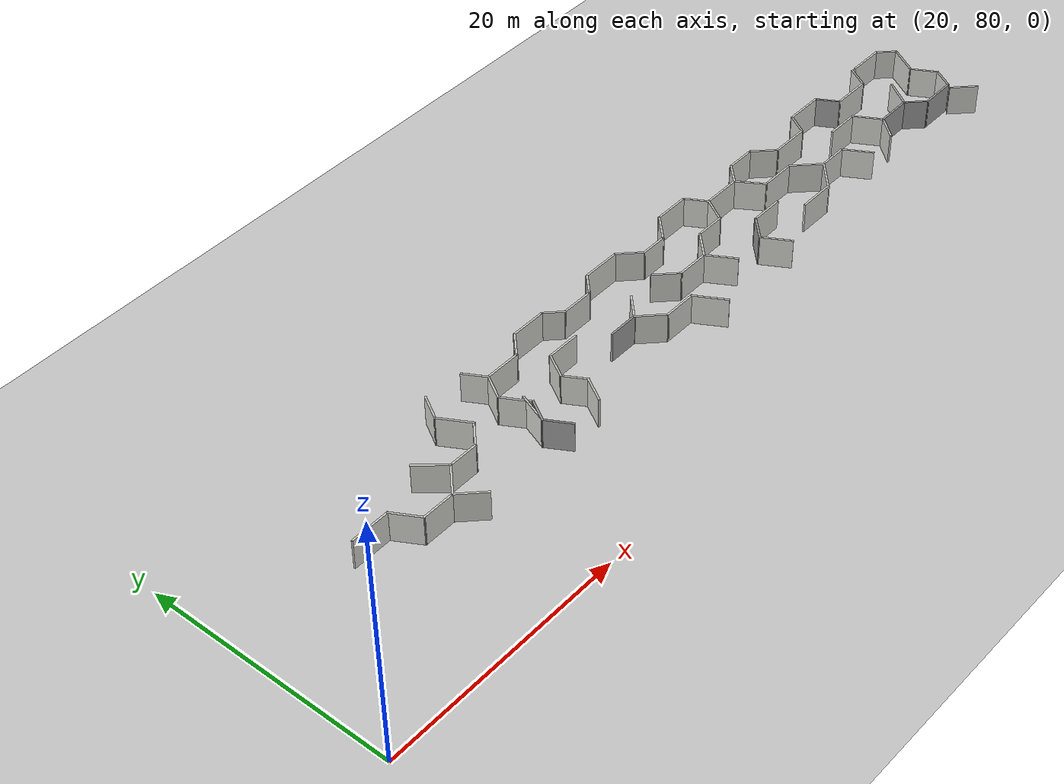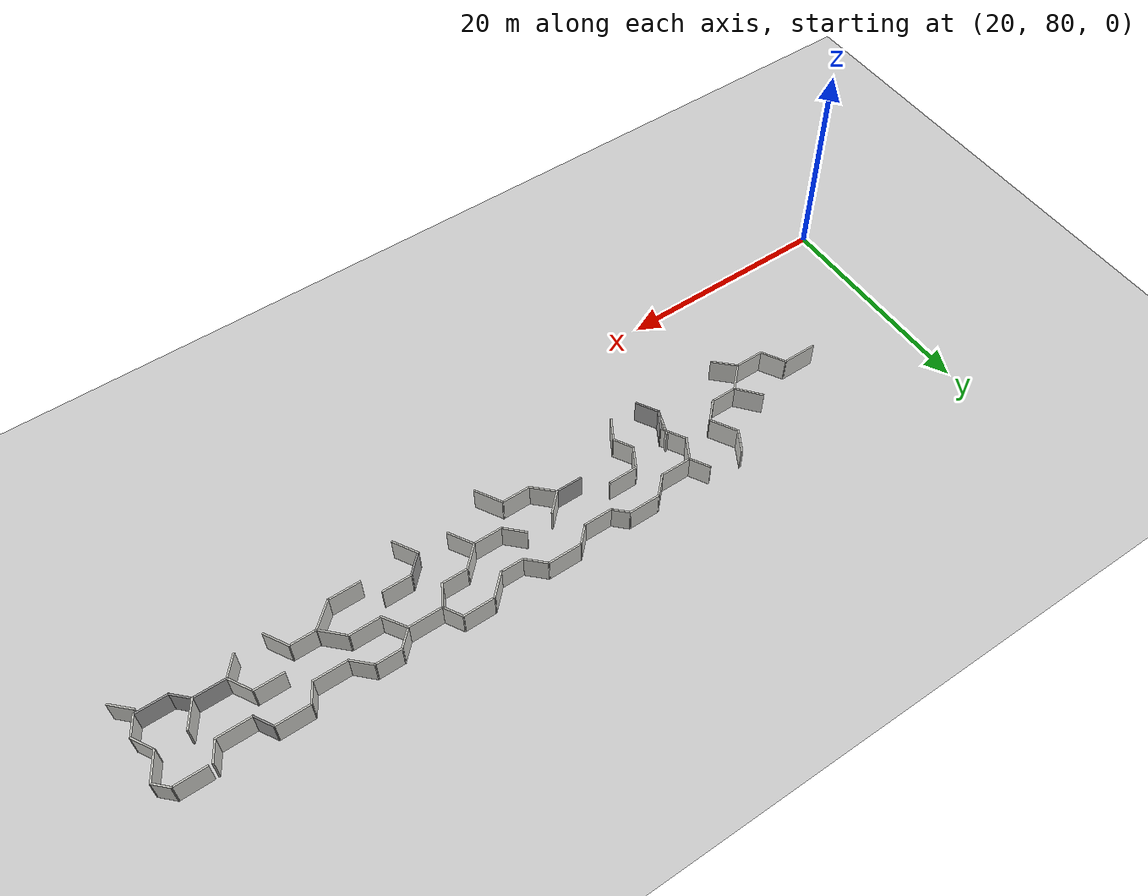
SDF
<sdf version="1.6">
 <world name="default">
  <model name="ground_plane">
   <pose>50 50 0 0 -0 0</pose>
   <static>1</static>
   <link name="link">
    <collision name="collision">
     <geometry><plane><normal>0 0 1</normal><size>100 100</size></plane></geometry>
     <surface><friction><ode><mu>100</mu><mu2>50</mu2></ode></friction></surface>
    </collision>
    <visual name="visual">
     <cast_shadows>0</cast_shadows>
     <geometry><plane><normal>0 0 1</normal><size>100 100</size></plane></geometry>
     <material>
      <script><uri>file://media/materials/scripts/gazebo.material</uri><name>Gazebo/Grey</name></script>
     </material>
    </visual>
   </link>
  </model>
  <model name="maze_1_0">
   <pose>55.5762 81.9377 0 0 -0 3.14</pose>
   <link name="Wall_10">
    <collision name="Wall_10_Collision">
     <geometry><box><size>2 0.15 2.5</size></box></geometry>
     <pose>0 0 1.25 0 -0 0</pose>
    </collision>
    <visual name="Wall_10_Visual">
     <pose>0 0 1.25 0 -0 0</pose>
     <geometry><box><size>2 0.15 2.5</size></box></geometry>
     <material>
      <script><uri>file://media/materials/scripts/gazebo.material</uri><name>Gazebo/Grey</name></script>
      <ambient>1 1 1 1</ambient>
     </material>
     <meta><layer>0</layer></meta>
    </visual>
    <pose>10.0085 -8.88058 0 0 -0 -2.0944</pose>
   </link>
   <link name="Wall_100">
    <collision name="Wall_100_Collision">
     <geometry><box><size>2.75 0.15 2.5</size></box></geometry>
     <pose>0 0 1.25 0 -0 0</pose>
    </collision>
    <visual name="Wall_100_Visual">
     <pose>0 0 1.25 0 -0 0</pose>
     <geometry><box><size>2.75 0.15 2.5</size></box></geometry>
     <material>
      <script><uri>file://media/materials/scripts/gazebo.material</uri><name>Gazebo/CeilingTiled</name></script>
      <ambient>1 1 1 1</ambient>
     </material>
     <meta><layer>0</layer></meta>
    </visual>
    <pose>-22.8053 -10.8644 0 0 -0 -0.785398</pose>
   </link>
   <link name="Wall_101">
    <collision name="Wall_101_Collision">
     <geometry><box><size>3 0.15 2.5</size></box></geometry>
     <pose>0 0 1.25 0 -0 0</pose>
    </collision>
    <visual name="Wall_101_Visual">
     <pose>0 0 1.25 0 -0 0</pose>
     <geometry><box><size>3 0.15 2.5</size></box></geometry>
     <material>
      <script><uri>file://media/materials/scripts/gazebo.material</uri><name>Gazebo/CeilingTiled</name></script>
      <ambient>1 1 1 1</ambient>
     </material>
     <meta><layer>0</layer></meta>
    </visual>
    <pose>-20.4611 -11.7836 0 0 -0 0</pose>
   </link>
   <link name="Wall_102">
    <collision name="Wall_102_Collision">
     <geometry><box><size>2.50433 0.15 2.5</size></box></geometry>
     <pose>0 0 1.25 0 -0 0</pose>
    </collision>
    <visual name="Wall_102_Visual">
     <pose>0 0 1.25 0 -0 0</pose>
     <geometry><box><size>2.50433 0.15 2.5</size></box></geometry>
     <material>
      <script><uri>file://media/materials/scripts/gazebo.material</uri><name>Gazebo/CeilingTiled</name></script>
      <ambient>1 1 1 1</ambient>
     </material>
     <meta><layer>0</layer></meta>
    </visual>
    <pose>-18.4056 -12.7777 0 0 -0 -1.00558</pose>
   </link>
   <link name="Wall_104">
    <collision name="Wall_104_Collision">
     <geometry><box><size>3 0.15 2.5</size></box></geometry>
     <pose>0 0 1.25 0 -0 0</pose>
    </collision>
    <visual name="Wall_104_Visual">
     <pose>0 0 1.25 0 -0 0</pose>
     <geometry><box><size>3 0.15 2.5</size></box></geometry>
     <material>
      <script><uri>file://media/materials/scripts/gazebo.material</uri><name>Gazebo/CeilingTiled</name></script>
      <ambient>1 1 1 1</ambient>
     </material>
     <meta><layer>0</layer></meta>
    </visual>
    <pose>-20.321 -8.13238 0 0 -0 3.14159</pose>
   </link>
   <link name="Wall_105">
    <collision name="Wall_105_Collision">
     <geometry><box><size>2.83342 0.15 2.5</size></box></geometry>
     <pose>0 0 1.25 0 -0 0</pose>
    </collision>
    <visual name="Wall_105_Visual">
     <pose>0 0 1.25 0 -0 0</pose>
     <geometry><box><size>2.83342 0.15 2.5</size></box></geometry>
     <material>
      <script><uri>file://media/materials/scripts/gazebo.material</uri><name>Gazebo/CeilingTiled</name></script>
      <ambient>1 1 1 1</ambient>
     </material>
     <meta><layer>0</layer></meta>
    </visual>
    <pose>-22.7353 -9.03876 0 0 -0 -2.39989</pose>
   </link>
   <link name="Wall_109">
    <collision name="Wall_109_Collision">
     <geometry><box><size>2.75 0.15 2.5</size></box></geometry>
     <pose>0 0 1.25 0 -0 0</pose>
    </collision>
    <visual name="Wall_109_Visual">
     <pose>0 0 1.25 0 -0 0</pose>
     <geometry><box><size>2.75 0.15 2.5</size></box></geometry>
     <material>
      <script><uri>file://media/materials/scripts/gazebo.material</uri><name>Gazebo/CeilingTiled</name></script>
      <ambient>1 1 1 1</ambient>
     </material>
     <meta><layer>0</layer></meta>
    </visual>
    <pose>-16.5382 -9.92253 0 0 -0 0</pose>
   </link>
   <link name="Wall_11">
    <collision name="Wall_11_Collision">
     <geometry><box><size>2.5 0.15 2.5</size></box></geometry>
     <pose>0 0 1.25 0 -0 0</pose>
    </collision>
    <visual name="Wall_11_Visual">
     <pose>0 0 1.25 0 -0 0</pose>
     <geometry><box><size>2.5 0.15 2.5</size></box></geometry>
     <material>
      <script><uri>file://media/materials/scripts/gazebo.material</uri><name>Gazebo/CeilingTiled</name></script>
      <ambient>1 1 1 1</ambient>
     </material>
     <meta><layer>0</layer></meta>
    </visual>
    <pose>10.1335 -10.6992 0 0 -0 -1.0472</pose>
   </link>
   <link name="Wall_110">
    <collision name="Wall_110_Collision">
     <geometry><box><size>2.25 0.15 2.5</size></box></geometry>
     <pose>0 0 1.25 0 -0 0</pose>
    </collision>
    <visual name="Wall_110_Visual">
     <pose>0 0 1.25 0 -0 0</pose>
     <geometry><box><size>2.25 0.15 2.5</size></box></geometry>
     <material>
      <script><uri>file://media/materials/scripts/gazebo.material</uri><name>Gazebo/Grey</name></script>
      <ambient>1 1 1 1</ambient>
     </material>
     <meta><layer>0</layer></meta>
    </visual>
    <pose>-14.4957 -9.18007 0 0 -0 0.785398</pose>
   </link>
   <link name="Wall_111">
    <collision name="Wall_111_Collision">
     <geometry><box><size>2.5 0.15 2.5</size></box></geometry>
     <pose>0 0 1.25 0 -0 0</pose>
    </collision>
    <visual name="Wall_111_Visual">
     <pose>0 0 1.25 0 -0 0</pose>
     <geometry><box><size>2.5 0.15 2.5</size></box></geometry>
     <material>
      <script><uri>file://media/materials/scripts/gazebo.material</uri><name>Gazebo/CeilingTiled</name></script>
      <ambient>1 1 1 1</ambient>
     </material>
     <meta><layer>0</layer></meta>
    </visual>
    <pose>-14.3408 -7.42003 0 0 -0 2.0944</pose>
   </link>
   <link name="Wall_12">
    <collision name="Wall_12_Collision">
     <geometry><box><size>2.25 0.15 2.5</size></box></geometry>
     <pose>0 0 1.25 0 -0 0</pose>
    </collision>
    <visual name="Wall_12_Visual">
     <pose>0 0 1.25 0 -0 0</pose>
     <geometry><box><size>2.25 0.15 2.5</size></box></geometry>
     <material>
      <script><uri>file://media/materials/scripts/gazebo.material</uri><name>Gazebo/CeilingTiled</name></script>
      <ambient>1 1 1 1</ambient>
     </material>
     <meta><layer>0</layer></meta>
    </visual>
    <pose>10.196 -12.6261 0 0 -0 -2.0944</pose>
   </link>
   <link name="Wall_126">
    <collision name="Wall_126_Collision">
     <geometry><box><size>2.5 0.15 2.5</size></box></geometry>
     <pose>0 0 1.25 0 -0 0</pose>
    </collision>
    <visual name="Wall_126_Visual">
     <pose>0 0 1.25 0 -0 0</pose>
     <geometry><box><size>2.5 0.15 2.5</size></box></geometry>
     <material>
      <script><uri>file://media/materials/scripts/gazebo.material</uri><name>Gazebo/Grey</name></script>
      <ambient>1 1 1 1</ambient>
     </material>
     <meta><layer>0</layer></meta>
    </visual>
    <pose>-0.135221 -9.92253 0 0 -0 3.14159</pose>
   </link>
   <link name="Wall_127">
    <collision name="Wall_127_Collision">
     <geometry><box><size>2.5 0.15 2.5</size></box></geometry>
     <pose>0 0 1.25 0 -0 0</pose>
    </collision>
    <visual name="Wall_127_Visual">
     <pose>0 0 1.25 0 -0 0</pose>
     <geometry><box><size>2.5 0.15 2.5</size></box></geometry>
     <material>
      <script><uri>file://media/materials/scripts/gazebo.material</uri><name>Gazebo/CeilingTiled</name></script>
      <ambient>1 1 1 1</ambient>
     </material>
     <meta><layer>0</layer></meta>
    </visual>
    <pose>-2.14107 -9.09168 0 0 -0 2.35619</pose>
   </link>
   <link name="Wall_128">
    <collision name="Wall_128_Collision">
     <geometry><box><size>2.75 0.15 2.5</size></box></geometry>
     <pose>0 0 1.25 0 -0 0</pose>
    </collision>
    <visual name="Wall_128_Visual">
     <pose>0 0 1.25 0 -0 0</pose>
     <geometry><box><size>2.75 0.15 2.5</size></box></geometry>
     <material>
      <script><uri>file://media/materials/scripts/gazebo.material</uri><name>Gazebo/CeilingTiled</name></script>
      <ambient>1 1 1 1</ambient>
     </material>
     <meta><layer>0</layer></meta>
    </visual>
    <pose>-4.27192 -8.26083 0 0 -0 3.14159</pose>
   </link>
   <link name="Wall_129">
    <collision name="Wall_129_Collision">
     <geometry><box><size>2.75 0.15 2.5</size></box></geometry>
     <pose>0 0 1.25 0 -0 0</pose>
    </collision>
    <visual name="Wall_129_Visual">
     <pose>0 0 1.25 0 -0 0</pose>
     <geometry><box><size>2.75 0.15 2.5</size></box></geometry>
     <material>
      <script><uri>file://media/materials/scripts/gazebo.material</uri><name>Gazebo/CeilingTiled</name></script>
      <ambient>1 1 1 1</ambient>
     </material>
     <meta><layer>0</layer></meta>
    </visual>
    <pose>-6.22192 -7.135 0 0 -0 2.0944</pose>
   </link>
   <link name="Wall_13">
    <collision name="Wall_13_Collision">
     <geometry><box><size>2 0.15 2.5</size></box></geometry>
     <pose>0 0 1.25 0 -0 0</pose>
    </collision>
    <visual name="Wall_13_Visual">
     <pose>0 0 1.25 0 -0 0</pose>
     <geometry><box><size>2 0.15 2.5</size></box></geometry>
     <material>
      <script><uri>file://media/materials/scripts/gazebo.material</uri><name>Gazebo/CeilingTiled</name></script>
      <ambient>1 1 1 1</ambient>
     </material>
     <meta><layer>0</layer></meta>
    </visual>
    <pose>10.1335 -14.3365 0 0 -0 -1.0472</pose>
   </link>
   <link name="Wall_135">
    <collision name="Wall_135_Collision">
     <geometry><box><size>2.22826 0.15 2.5</size></box></geometry>
     <pose>0 0 1.25 0 -0 0</pose>
    </collision>
    <visual name="Wall_135_Visual">
     <pose>0 0 1.25 0 -0 0</pose>
     <geometry><box><size>2.22826 0.15 2.5</size></box></geometry>
     <material>
      <script><uri>file://media/materials/scripts/gazebo.material</uri><name>Gazebo/CeilingTiled</name></script>
      <ambient>1 1 1 1</ambient>
     </material>
     <meta><layer>0</layer></meta>
    </visual>
    <pose>-2.04743 -10.6549 0 0 -0 0.782082</pose>
   </link>
   <link name="Wall_137">
    <collision name="Wall_137_Collision">
     <geometry><box><size>2.75 0.15 2.5</size></box></geometry>
     <pose>0 0 1.25 0 -0 0</pose>
    </collision>
    <visual name="Wall_137_Visual">
     <pose>0 0 1.25 0 -0 0</pose>
     <geometry><box><size>2.75 0.15 2.5</size></box></geometry>
     <material>
      <script><uri>file://media/materials/scripts/gazebo.material</uri><name>Gazebo/CeilingTiled</name></script>
      <ambient>1 1 1 1</ambient>
     </material>
     <meta><layer>0</layer></meta>
    </visual>
    <pose>4.12993 -11.7127 0 0 -0 0</pose>
   </link>
   <link name="Wall_138">
    <collision name="Wall_138_Collision">
     <geometry><box><size>2.25 0.15 2.5</size></box></geometry>
     <pose>0 0 1.25 0 -0 0</pose>
    </collision>
    <visual name="Wall_138_Visual">
     <pose>0 0 1.25 0 -0 0</pose>
     <geometry><box><size>2.25 0.15 2.5</size></box></geometry>
     <material>
      <script><uri>file://media/materials/scripts/gazebo.material</uri><name>Gazebo/CeilingTiled</name></script>
      <ambient>1 1 1 1</ambient>
     </material>
     <meta><layer>0</layer></meta>
    </visual>
    <pose>5.95493 -10.8034 0 0 -0 1.0472</pose>
   </link>
   <link name="Wall_139">
    <collision name="Wall_139_Collision">
     <geometry><box><size>2 0.15 2.5</size></box></geometry>
     <pose>0 0 1.25 0 -0 0</pose>
    </collision>
    <visual name="Wall_139_Visual">
     <pose>0 0 1.25 0 -0 0</pose>
     <geometry><box><size>2 0.15 2.5</size></box></geometry>
     <material>
      <script><uri>file://media/materials/scripts/gazebo.material</uri><name>Gazebo/CeilingTiled</name></script>
      <ambient>1 1 1 1</ambient>
     </material>
     <meta><layer>0</layer></meta>
    </visual>
    <pose>6.01743 -9.09296 0 0 -0 2.0944</pose>
   </link>
   <link name="Wall_140">
    <collision name="Wall_140_Collision">
     <geometry><box><size>2.25 0.15 2.5</size></box></geometry>
     <pose>0 0 1.25 0 -0 0</pose>
    </collision>
    <visual name="Wall_140_Visual">
     <pose>0 0 1.25 0 -0 0</pose>
     <geometry><box><size>2.25 0.15 2.5</size></box></geometry>
     <material>
      <script><uri>file://media/materials/scripts/gazebo.material</uri><name>Gazebo/CeilingTiled</name></script>
      <ambient>1 1 1 1</ambient>
     </material>
     <meta><layer>0</layer></meta>
    </visual>
    <pose>6.07993 -7.38256 0 0 -0 1.0472</pose>
   </link>
   <link name="Wall_15">
    <collision name="Wall_15_Collision">
     <geometry><box><size>3 0.15 2.5</size></box></geometry>
     <pose>0 0 1.25 0 -0 0</pose>
    </collision>
    <visual name="Wall_15_Visual">
     <pose>0 0 1.25 0 -0 0</pose>
     <geometry><box><size>3 0.15 2.5</size></box></geometry>
     <material>
      <script><uri>file://media/materials/scripts/gazebo.material</uri><name>Gazebo/CeilingTiled</name></script>
      <ambient>1 1 1 1</ambient>
     </material>
     <meta><layer>0</layer></meta>
    </visual>
    <pose>8.24595 -13.5355 0 0 -0 3.14159</pose>
   </link>
   <link name="Wall_16">
    <collision name="Wall_16_Collision">
     <geometry><box><size>2.25 0.15 2.5</size></box></geometry>
     <pose>0 0 1.25 0 -0 0</pose>
    </collision>
    <visual name="Wall_16_Visual">
     <pose>0 0 1.25 0 -0 0</pose>
     <geometry><box><size>2.25 0.15 2.5</size></box></geometry>
     <material>
      <script><uri>file://media/materials/scripts/gazebo.material</uri><name>Gazebo/CeilingTiled</name></script>
      <ambient>1 1 1 1</ambient>
     </material>
     <meta><layer>0</layer></meta>
    </visual>
    <pose>6.07849 -14.2779 0 0 -0 -2.35619</pose>
   </link>
   <link name="Wall_17">
    <collision name="Wall_17_Collision">
     <geometry><box><size>3 0.15 2.5</size></box></geometry>
     <pose>0 0 1.25 0 -0 0</pose>
    </collision>
    <visual name="Wall_17_Visual">
     <pose>0 0 1.25 0 -0 0</pose>
     <geometry><box><size>3 0.15 2.5</size></box></geometry>
     <material>
      <script><uri>file://media/materials/scripts/gazebo.material</uri><name>Gazebo/CeilingTiled</name></script>
      <ambient>1 1 1 1</ambient>
     </material>
     <meta><layer>0</layer></meta>
    </visual>
    <pose>3.91103 -15.0204 0 0 -0 3.14159</pose>
   </link>
   <link name="Wall_178">
    <collision name="Wall_178_Collision">
     <geometry><box><size>2.5 0.15 2.5</size></box></geometry>
     <pose>0 0 1.25 0 -0 0</pose>
    </collision>
    <visual name="Wall_178_Visual">
     <pose>0 0 1.25 0 -0 0</pose>
     <geometry><box><size>2.5 0.15 2.5</size></box></geometry>
     <material>
      <script><uri>file://media/materials/scripts/gazebo.material</uri><name>Gazebo/CeilingTiled</name></script>
      <ambient>1 1 1 1</ambient>
     </material>
     <meta><layer>0</layer></meta>
    </visual>
    <pose>18.3889 -7.17307 0 0 -0 -0.785398</pose>
   </link>
   <link name="Wall_179">
    <collision name="Wall_179_Collision">
     <geometry><box><size>2.75 0.15 2.5</size></box></geometry>
     <pose>0 0 1.25 0 -0 0</pose>
    </collision>
    <visual name="Wall_179_Visual">
     <pose>0 0 1.25 0 -0 0</pose>
     <geometry><box><size>2.75 0.15 2.5</size></box></geometry>
     <material>
      <script><uri>file://media/materials/scripts/gazebo.material</uri><name>Gazebo/CeilingTiled</name></script>
      <ambient>1 1 1 1</ambient>
     </material>
     <meta><layer>0</layer></meta>
    </visual>
    <pose>18.3005 -8.92316 0 0 -0 -2.35619</pose>
   </link>
   <link name="Wall_18">
    <collision name="Wall_18_Collision">
     <geometry><box><size>1.75 0.15 2.5</size></box></geometry>
     <pose>0 0 1.25 0 -0 0</pose>
    </collision>
    <visual name="Wall_18_Visual">
     <pose>0 0 1.25 0 -0 0</pose>
     <geometry><box><size>1.75 0.15 2.5</size></box></geometry>
     <material>
      <script><uri>file://media/materials/scripts/gazebo.material</uri><name>Gazebo/CeilingTiled</name></script>
      <ambient>1 1 1 1</ambient>
     </material>
     <meta><layer>0</layer></meta>
    </visual>
    <pose>1.92034 -14.4547 0 0 -0 2.35619</pose>
   </link>
   <link name="Wall_180">
    <collision name="Wall_180_Collision">
     <geometry><box><size>2.5 0.15 2.5</size></box></geometry>
     <pose>0 0 1.25 0 -0 0</pose>
    </collision>
    <visual name="Wall_180_Visual">
     <pose>0 0 1.25 0 -0 0</pose>
     <geometry><box><size>2.5 0.15 2.5</size></box></geometry>
     <material>
      <script><uri>file://media/materials/scripts/gazebo.material</uri><name>Gazebo/CeilingTiled</name></script>
      <ambient>1 1 1 1</ambient>
     </material>
     <meta><layer>0</layer></meta>
    </visual>
    <pose>16.2062 -9.8424 0 0 -0 3.14159</pose>
   </link>
   <link name="Wall_181">
    <collision name="Wall_181_Collision">
     <geometry><box><size>2.25 0.15 2.5</size></box></geometry>
     <pose>0 0 1.25 0 -0 0</pose>
    </collision>
    <visual name="Wall_181_Visual">
     <pose>0 0 1.25 0 -0 0</pose>
     <geometry><box><size>2.25 0.15 2.5</size></box></geometry>
     <material>
      <script><uri>file://media/materials/scripts/gazebo.material</uri><name>Gazebo/CeilingTiled</name></script>
      <ambient>1 1 1 1</ambient>
     </material>
     <meta><layer>0</layer></meta>
    </visual>
    <pose>14.2888 -10.5849 0 0 -0 -2.35619</pose>
   </link>
   <link name="Wall_182">
    <collision name="Wall_182_Collision">
     <geometry><box><size>2.75 0.15 2.5</size></box></geometry>
     <pose>0 0 1.25 0 -0 0</pose>
    </collision>
    <visual name="Wall_182_Visual">
     <pose>0 0 1.25 0 -0 0</pose>
     <geometry><box><size>2.75 0.15 2.5</size></box></geometry>
     <material>
      <script><uri>file://media/materials/scripts/gazebo.material</uri><name>Gazebo/CeilingTiled</name></script>
      <ambient>1 1 1 1</ambient>
     </material>
     <meta><layer>0</layer></meta>
    </visual>
    <pose>14.1963 -12.4532 0 0 -0 -1.0472</pose>
   </link>
   <link name="Wall_183">
    <collision name="Wall_183_Collision">
     <geometry><box><size>2.25 0.15 2.5</size></box></geometry>
     <pose>0 0 1.25 0 -0 0</pose>
    </collision>
    <visual name="Wall_183_Visual">
     <pose>0 0 1.25 0 -0 0</pose>
     <geometry><box><size>2.25 0.15 2.5</size></box></geometry>
     <material>
      <script><uri>file://media/materials/scripts/gazebo.material</uri><name>Gazebo/CeilingTiled</name></script>
      <ambient>1 1 1 1</ambient>
     </material>
     <meta><layer>0</layer></meta>
    </visual>
    <pose>14.3213 -14.4883 0 0 -0 -2.0944</pose>
   </link>
   <link name="Wall_185">
    <collision name="Wall_185_Collision">
     <geometry><box><size>2.70016 0.15 2.5</size></box></geometry>
     <pose>0 0 1.25 0 -0 0</pose>
    </collision>
    <visual name="Wall_185_Visual">
     <pose>0 0 1.25 0 -0 0</pose>
     <geometry><box><size>2.70016 0.15 2.5</size></box></geometry>
     <material>
      <script><uri>file://media/materials/scripts/gazebo.material</uri><name>Gazebo/CeilingTiled</name></script>
      <ambient>1 1 1 1</ambient>
     </material>
     <meta><layer>0</layer></meta>
    </visual>
    <pose>18.202 -10.8182 0 0 -0 2.27007</pose>
   </link>
   <link name="Wall_187">
    <collision name="Wall_187_Collision">
     <geometry><box><size>2.75 0.15 2.5</size></box></geometry>
     <pose>0 0 1.25 0 -0 0</pose>
    </collision>
    <visual name="Wall_187_Visual">
     <pose>0 0 1.25 0 -0 0</pose>
     <geometry><box><size>2.75 0.15 2.5</size></box></geometry>
     <material>
      <script><uri>file://media/materials/scripts/gazebo.material</uri><name>Gazebo/CeilingTiled</name></script>
      <ambient>1 1 1 1</ambient>
     </material>
     <meta><layer>0</layer></meta>
    </visual>
    <pose>20.5197 -8.00392 0 0 -0 0</pose>
   </link>
   <link name="Wall_188">
    <collision name="Wall_188_Collision">
     <geometry><box><size>2.5 0.15 2.5</size></box></geometry>
     <pose>0 0 1.25 0 -0 0</pose>
    </collision>
    <visual name="Wall_188_Visual">
     <pose>0 0 1.25 0 -0 0</pose>
     <geometry><box><size>2.5 0.15 2.5</size></box></geometry>
     <material>
      <script><uri>file://media/materials/scripts/gazebo.material</uri><name>Gazebo/CeilingTiled</name></script>
      <ambient>1 1 1 1</ambient>
     </material>
     <meta><layer>0</layer></meta>
    </visual>
    <pose>22.4072 -9.0215 0 0 -0 -1.0472</pose>
   </link>
   <link name="Wall_189">
    <collision name="Wall_189_Collision">
     <geometry><box><size>3.25 0.15 2.5</size></box></geometry>
     <pose>0 0 1.25 0 -0 0</pose>
    </collision>
    <visual name="Wall_189_Visual">
     <pose>0 0 1.25 0 -0 0</pose>
     <geometry><box><size>3.25 0.15 2.5</size></box></geometry>
     <material>
      <script><uri>file://media/materials/scripts/gazebo.material</uri><name>Gazebo/CeilingTiled</name></script>
      <ambient>1 1 1 1</ambient>
     </material>
     <meta><layer>0</layer></meta>
    </visual>
    <pose>24.5447 -10.0391 0 0 -0 0</pose>
   </link>
   <link name="Wall_19">
    <collision name="Wall_19_Collision">
     <geometry><box><size>2.75 0.15 2.5</size></box></geometry>
     <pose>0 0 1.25 0 -0 0</pose>
    </collision>
    <visual name="Wall_19_Visual">
     <pose>0 0 1.25 0 -0 0</pose>
     <geometry><box><size>2.75 0.15 2.5</size></box></geometry>
     <material>
      <script><uri>file://media/materials/scripts/gazebo.material</uri><name>Gazebo/CeilingTiled</name></script>
      <ambient>1 1 1 1</ambient>
     </material>
     <meta><layer>0</layer></meta>
    </visual>
    <pose>0.054658 -13.889 0 0 -0 3.14159</pose>
   </link>
   <link name="Wall_20">
    <collision name="Wall_20_Collision">
     <geometry><box><size>2 0.15 2.5</size></box></geometry>
     <pose>0 0 1.25 0 -0 0</pose>
    </collision>
    <visual name="Wall_20_Visual">
     <pose>0 0 1.25 0 -0 0</pose>
     <geometry><box><size>2 0.15 2.5</size></box></geometry>
     <material>
      <script><uri>file://media/materials/scripts/gazebo.material</uri><name>Gazebo/CeilingTiled</name></script>
      <ambient>1 1 1 1</ambient>
     </material>
     <meta><layer>0</layer></meta>
    </visual>
    <pose>-1.89942 -14.5431 0 0 -0 -2.35619</pose>
   </link>
   <link name="Wall_21">
    <collision name="Wall_21_Collision">
     <geometry><box><size>3.25 0.15 2.5</size></box></geometry>
     <pose>0 0 1.25 0 -0 0</pose>
    </collision>
    <visual name="Wall_21_Visual">
     <pose>0 0 1.25 0 -0 0</pose>
     <geometry><box><size>3.25 0.15 2.5</size></box></geometry>
     <material>
      <script><uri>file://media/materials/scripts/gazebo.material</uri><name>Gazebo/CeilingTiled</name></script>
      <ambient>1 1 1 1</ambient>
     </material>
     <meta><layer>0</layer></meta>
    </visual>
    <pose>-4.10349 -15.1972 0 0 -0 3.14159</pose>
   </link>
   <link name="Wall_22">
    <collision name="Wall_22_Collision">
     <geometry><box><size>2.25 0.15 2.5</size></box></geometry>
     <pose>0 0 1.25 0 -0 0</pose>
    </collision>
    <visual name="Wall_22_Visual">
     <pose>0 0 1.25 0 -0 0</pose>
     <geometry><box><size>2.25 0.15 2.5</size></box></geometry>
     <material>
      <script><uri>file://media/materials/scripts/gazebo.material</uri><name>Gazebo/CeilingTiled</name></script>
      <ambient>1 1 1 1</ambient>
     </material>
     <meta><layer>0</layer></meta>
    </visual>
    <pose>-6.39595 -14.4547 0 0 -0 2.35619</pose>
   </link>
   <link name="Wall_23">
    <collision name="Wall_23_Collision">
     <geometry><box><size>2.25 0.15 2.5</size></box></geometry>
     <pose>0 0 1.25 0 -0 0</pose>
    </collision>
    <visual name="Wall_23_Visual">
     <pose>0 0 1.25 0 -0 0</pose>
     <geometry><box><size>2.25 0.15 2.5</size></box></geometry>
     <material>
      <script><uri>file://media/materials/scripts/gazebo.material</uri><name>Gazebo/CeilingTiled</name></script>
      <ambient>1 1 1 1</ambient>
     </material>
     <meta><layer>0</layer></meta>
    </visual>
    <pose>-8.18841 -13.7122 0 0 -0 3.14159</pose>
   </link>
   <link name="Wall_24">
    <collision name="Wall_24_Collision">
     <geometry><box><size>2.5 0.15 2.5</size></box></geometry>
     <pose>0 0 1.25 0 -0 0</pose>
    </collision>
    <visual name="Wall_24_Visual">
     <pose>0 0 1.25 0 -0 0</pose>
     <geometry><box><size>2.5 0.15 2.5</size></box></geometry>
     <material>
      <script><uri>file://media/materials/scripts/gazebo.material</uri><name>Gazebo/CeilingTiled</name></script>
      <ambient>1 1 1 1</ambient>
     </material>
     <meta><layer>0</layer></meta>
    </visual>
    <pose>-10.0693 -14.5431 0 0 -0 -2.35619</pose>
   </link>
   <link name="Wall_25">
    <collision name="Wall_25_Collision">
     <geometry><box><size>3 0.15 2.5</size></box></geometry>
     <pose>0 0 1.25 0 -0 0</pose>
    </collision>
    <visual name="Wall_25_Visual">
     <pose>0 0 1.25 0 -0 0</pose>
     <geometry><box><size>3 0.15 2.5</size></box></geometry>
     <material>
      <script><uri>file://media/materials/scripts/gazebo.material</uri><name>Gazebo/CeilingTiled</name></script>
      <ambient>1 1 1 1</ambient>
     </material>
     <meta><layer>0</layer></meta>
    </visual>
    <pose>-12.3251 -15.3739 0 0 -0 3.14159</pose>
   </link>
   <link name="Wall_26">
    <collision name="Wall_26_Collision">
     <geometry><box><size>2 0.15 2.5</size></box></geometry>
     <pose>0 0 1.25 0 -0 0</pose>
    </collision>
    <visual name="Wall_26_Visual">
     <pose>0 0 1.25 0 -0 0</pose>
     <geometry><box><size>2 0.15 2.5</size></box></geometry>
     <material>
      <script><uri>file://media/materials/scripts/gazebo.material</uri><name>Gazebo/CeilingTiled</name></script>
      <ambient>1 1 1 1</ambient>
     </material>
     <meta><layer>0</layer></meta>
    </visual>
    <pose>-14.2126 -14.5729 0 0 -0 2.0944</pose>
   </link>
   <link name="Wall_27">
    <collision name="Wall_27_Collision">
     <geometry><box><size>2.25 0.15 2.5</size></box></geometry>
     <pose>0 0 1.25 0 -0 0</pose>
    </collision>
    <visual name="Wall_27_Visual">
     <pose>0 0 1.25 0 -0 0</pose>
     <geometry><box><size>2.25 0.15 2.5</size></box></geometry>
     <material>
      <script><uri>file://media/materials/scripts/gazebo.material</uri><name>Gazebo/CeilingTiled</name></script>
      <ambient>1 1 1 1</ambient>
     </material>
     <meta><layer>0</layer></meta>
    </visual>
    <pose>-14.1501 -12.8625 0 0 -0 1.0472</pose>
   </link>
   <link name="Wall_28">
    <collision name="Wall_28_Collision">
     <geometry><box><size>2.5 0.15 2.5</size></box></geometry>
     <pose>0 0 1.25 0 -0 0</pose>
    </collision>
    <visual name="Wall_28_Visual">
     <pose>0 0 1.25 0 -0 0</pose>
     <geometry><box><size>2.5 0.15 2.5</size></box></geometry>
     <material>
      <script><uri>file://media/materials/scripts/gazebo.material</uri><name>Gazebo/CeilingTiled</name></script>
      <ambient>1 1 1 1</ambient>
     </material>
     <meta><layer>0</layer></meta>
    </visual>
    <pose>-12.4501 -11.9531 0 0 -0 0</pose>
   </link>
   <link name="Wall_29">
    <collision name="Wall_29_Collision">
     <geometry><box><size>2.5 0.15 2.5</size></box></geometry>
     <pose>0 0 1.25 0 -0 0</pose>
    </collision>
    <visual name="Wall_29_Visual">
     <pose>0 0 1.25 0 -0 0</pose>
     <geometry><box><size>2.5 0.15 2.5</size></box></geometry>
     <material>
      <script><uri>file://media/materials/scripts/gazebo.material</uri><name>Gazebo/CeilingTiled</name></script>
      <ambient>1 1 1 1</ambient>
     </material>
     <meta><layer>0</layer></meta>
    </visual>
    <pose>-10.4443 -11.1223 0 0 -0 0.785398</pose>
   </link>
   <link name="Wall_30">
    <collision name="Wall_30_Collision">
     <geometry><box><size>2.75 0.15 2.5</size></box></geometry>
     <pose>0 0 1.25 0 -0 0</pose>
    </collision>
    <visual name="Wall_30_Visual">
     <pose>0 0 1.25 0 -0 0</pose>
     <geometry><box><size>2.75 0.15 2.5</size></box></geometry>
     <material>
      <script><uri>file://media/materials/scripts/gazebo.material</uri><name>Gazebo/CeilingTiled</name></script>
      <ambient>1 1 1 1</ambient>
     </material>
     <meta><layer>0</layer></meta>
    </visual>
    <pose>-8.31341 -10.2914 0 0 -0 0</pose>
   </link>
   <link name="Wall_31">
    <collision name="Wall_31_Collision">
     <geometry><box><size>2.25 0.15 2.5</size></box></geometry>
     <pose>0 0 1.25 0 -0 0</pose>
    </collision>
    <visual name="Wall_31_Visual">
     <pose>0 0 1.25 0 -0 0</pose>
     <geometry><box><size>2.25 0.15 2.5</size></box></geometry>
     <material>
      <script><uri>file://media/materials/scripts/gazebo.material</uri><name>Gazebo/CeilingTiled</name></script>
      <ambient>1 1 1 1</ambient>
     </material>
     <meta><layer>0</layer></meta>
    </visual>
    <pose>-6.27095 -11.0339 0 0 -0 -0.785398</pose>
   </link>
   <link name="Wall_33">
    <collision name="Wall_33_Collision">
     <geometry><box><size>2.56291 0.15 2.5</size></box></geometry>
     <pose>0 0 1.25 0 -0 0</pose>
    </collision>
    <visual name="Wall_33_Visual">
     <pose>0 0 1.25 0 -0 0</pose>
     <geometry><box><size>2.56291 0.15 2.5</size></box></geometry>
     <material>
      <script><uri>file://media/materials/scripts/gazebo.material</uri><name>Gazebo/CeilingTiled</name></script>
      <ambient>1 1 1 1</ambient>
     </material>
     <meta><layer>0</layer></meta>
    </visual>
    <pose>-10.2269 -9.25259 0 0 -0 -1.03738</pose>
   </link>
   <link name="Wall_35">
    <collision name="Wall_35_Collision">
     <geometry><box><size>3.25 0.15 2.5</size></box></geometry>
     <pose>0 0 1.25 0 -0 0</pose>
    </collision>
    <visual name="Wall_35_Visual">
     <pose>0 0 1.25 0 -0 0</pose>
     <geometry><box><size>3.25 0.15 2.5</size></box></geometry>
     <material>
      <script><uri>file://media/materials/scripts/gazebo.material</uri><name>Gazebo/CeilingTiled</name></script>
      <ambient>1 1 1 1</ambient>
     </material>
     <meta><layer>0</layer></meta>
    </visual>
    <pose>-16.2251 -13.7718 0 0 -0 3.14159</pose>
   </link>
   <link name="Wall_36">
    <collision name="Wall_36_Collision">
     <geometry><box><size>2 0.15 2.5</size></box></geometry>
     <pose>0 0 1.25 0 -0 0</pose>
    </collision>
    <visual name="Wall_36_Visual">
     <pose>0 0 1.25 0 -0 0</pose>
     <geometry><box><size>2 0.15 2.5</size></box></geometry>
     <material>
      <script><uri>file://media/materials/scripts/gazebo.material</uri><name>Gazebo/CeilingTiled</name></script>
      <ambient>1 1 1 1</ambient>
     </material>
     <meta><layer>0</layer></meta>
    </visual>
    <pose>-18.4292 -14.4259 0 0 -0 -2.35619</pose>
   </link>
   <link name="Wall_37">
    <collision name="Wall_37_Collision">
     <geometry><box><size>2.5 0.15 2.5</size></box></geometry>
     <pose>0 0 1.25 0 -0 0</pose>
    </collision>
    <visual name="Wall_37_Visual">
     <pose>0 0 1.25 0 -0 0</pose>
     <geometry><box><size>2.5 0.15 2.5</size></box></geometry>
     <material>
      <script><uri>file://media/materials/scripts/gazebo.material</uri><name>Gazebo/CeilingTiled</name></script>
      <ambient>1 1 1 1</ambient>
     </material>
     <meta><layer>0</layer></meta>
    </visual>
    <pose>-20.2583 -15.0799 0 0 -0 3.14159</pose>
   </link>
   <link name="Wall_38">
    <collision name="Wall_38_Collision">
     <geometry><box><size>2.25 0.15 2.5</size></box></geometry>
     <pose>0 0 1.25 0 -0 0</pose>
    </collision>
    <visual name="Wall_38_Visual">
     <pose>0 0 1.25 0 -0 0</pose>
     <geometry><box><size>2.25 0.15 2.5</size></box></geometry>
     <material>
      <script><uri>file://media/materials/scripts/gazebo.material</uri><name>Gazebo/CeilingTiled</name></script>
      <ambient>1 1 1 1</ambient>
     </material>
     <meta><layer>0</layer></meta>
    </visual>
    <pose>-22.1757 -14.3375 0 0 -0 2.35619</pose>
   </link>
   <link name="Wall_39">
    <collision name="Wall_39_Collision">
     <geometry><box><size>3.25 0.15 2.5</size></box></geometry>
     <pose>0 0 1.25 0 -0 0</pose>
    </collision>
    <visual name="Wall_39_Visual">
     <pose>0 0 1.25 0 -0 0</pose>
     <geometry><box><size>3.25 0.15 2.5</size></box></geometry>
     <material>
      <script><uri>file://media/materials/scripts/gazebo.material</uri><name>Gazebo/CeilingTiled</name></script>
      <ambient>1 1 1 1</ambient>
     </material>
     <meta><layer>0</layer></meta>
    </visual>
    <pose>-24.4682 -13.595 0 0 -0 3.14159</pose>
   </link>
   <link name="Wall_40">
    <collision name="Wall_40_Collision">
     <geometry><box><size>2 0.15 2.5</size></box></geometry>
     <pose>0 0 1.25 0 -0 0</pose>
    </collision>
    <visual name="Wall_40_Visual">
     <pose>0 0 1.25 0 -0 0</pose>
     <geometry><box><size>2 0.15 2.5</size></box></geometry>
     <material>
      <script><uri>file://media/materials/scripts/gazebo.material</uri><name>Gazebo/CeilingTiled</name></script>
      <ambient>1 1 1 1</ambient>
     </material>
     <meta><layer>0</layer></meta>
    </visual>
    <pose>-26.4807 -14.3961 0 0 -0 -2.0944</pose>
   </link>
   <link name="Wall_41">
    <collision name="Wall_41_Collision">
     <geometry><box><size>3.25 0.15 2.5</size></box></geometry>
     <pose>0 0 1.25 0 -0 0</pose>
    </collision>
    <visual name="Wall_41_Visual">
     <pose>0 0 1.25 0 -0 0</pose>
     <geometry><box><size>3.25 0.15 2.5</size></box></geometry>
     <material>
      <script><uri>file://media/materials/scripts/gazebo.material</uri><name>Gazebo/CeilingTiled</name></script>
      <ambient>1 1 1 1</ambient>
     </material>
     <meta><layer>0</layer></meta>
    </visual>
    <pose>-28.4932 -15.1972 0 0 -0 3.14159</pose>
   </link>
   <link name="Wall_42">
    <collision name="Wall_42_Collision">
     <geometry><box><size>2 0.15 2.5</size></box></geometry>
     <pose>0 0 1.25 0 -0 0</pose>
    </collision>
    <visual name="Wall_42_Visual">
     <pose>0 0 1.25 0 -0 0</pose>
     <geometry><box><size>2 0.15 2.5</size></box></geometry>
     <material>
      <script><uri>file://media/materials/scripts/gazebo.material</uri><name>Gazebo/Grey</name></script>
      <ambient>1 1 1 1</ambient>
     </material>
     <meta><layer>0</layer></meta>
    </visual>
    <pose>-30.5057 -14.3961 0 0 -0 2.0944</pose>
   </link>
   <link name="Wall_43">
    <collision name="Wall_43_Collision">
     <geometry><box><size>3.25 0.15 2.5</size></box></geometry>
     <pose>0 0 1.25 0 -0 0</pose>
    </collision>
    <visual name="Wall_43_Visual">
     <pose>0 0 1.25 0 -0 0</pose>
     <geometry><box><size>3.25 0.15 2.5</size></box></geometry>
     <material>
      <script><uri>file://media/materials/scripts/gazebo.material</uri><name>Gazebo/CeilingTiled</name></script>
      <ambient>1 1 1 1</ambient>
     </material>
     <meta><layer>0</layer></meta>
    </visual>
    <pose>-32.5182 -13.595 0 0 -0 3.14159</pose>
   </link>
   <link name="Wall_44">
    <collision name="Wall_44_Collision">
     <geometry><box><size>2 0.15 2.5</size></box></geometry>
     <pose>0 0 1.25 0 -0 0</pose>
    </collision>
    <visual name="Wall_44_Visual">
     <pose>0 0 1.25 0 -0 0</pose>
     <geometry><box><size>2 0.15 2.5</size></box></geometry>
     <material>
      <script><uri>file://media/materials/scripts/gazebo.material</uri><name>Gazebo/CeilingTiled</name></script>
      <ambient>1 1 1 1</ambient>
     </material>
     <meta><layer>0</layer></meta>
    </visual>
    <pose>-34.5307 -14.3961 0 0 -0 -2.0944</pose>
   </link>
   <link name="Wall_46">
    <collision name="Wall_46_Collision">
     <geometry><box><size>3 0.15 2.5</size></box></geometry>
     <pose>0 0 1.25 0 -0 0</pose>
    </collision>
    <visual name="Wall_46_Visual">
     <pose>0 0 1.25 0 -0 0</pose>
     <geometry><box><size>3 0.15 2.5</size></box></geometry>
     <material>
      <script><uri>file://media/materials/scripts/gazebo.material</uri><name>Gazebo/CeilingTiled</name></script>
      <ambient>1 1 1 1</ambient>
     </material>
     <meta><layer>0</layer></meta>
    </visual>
    <pose>-36.8393 -15.2116 0 0 -0 3.14159</pose>
   </link>
   <link name="Wall_47">
    <collision name="Wall_47_Collision">
     <geometry><box><size>1.75 0.15 2.5</size></box></geometry>
     <pose>0 0 1.25 0 -0 0</pose>
    </collision>
    <visual name="Wall_47_Visual">
     <pose>0 0 1.25 0 -0 0</pose>
     <geometry><box><size>1.75 0.15 2.5</size></box></geometry>
     <material>
      <script><uri>file://media/materials/scripts/gazebo.material</uri><name>Gazebo/CeilingTiled</name></script>
      <ambient>1 1 1 1</ambient>
     </material>
     <meta><layer>0</layer></meta>
    </visual>
    <pose>-38.8299 -14.6459 0 0 -0 2.35619</pose>
   </link>
   <link name="Wall_48">
    <collision name="Wall_48_Collision">
     <geometry><box><size>2.75 0.15 2.5</size></box></geometry>
     <pose>0 0 1.25 0 -0 0</pose>
    </collision>
    <visual name="Wall_48_Visual">
     <pose>0 0 1.25 0 -0 0</pose>
     <geometry><box><size>2.75 0.15 2.5</size></box></geometry>
     <material>
      <script><uri>file://media/materials/scripts/gazebo.material</uri><name>Gazebo/CeilingTiled</name></script>
      <ambient>1 1 1 1</ambient>
     </material>
     <meta><layer>0</layer></meta>
    </visual>
    <pose>-38.7456 -12.9544 0 0 -0 1.0472</pose>
   </link>
   <link name="Wall_49">
    <collision name="Wall_49_Collision">
     <geometry><box><size>2.25 0.15 2.5</size></box></geometry>
     <pose>0 0 1.25 0 -0 0</pose>
    </collision>
    <visual name="Wall_49_Visual">
     <pose>0 0 1.25 0 -0 0</pose>
     <geometry><box><size>2.25 0.15 2.5</size></box></geometry>
     <material>
      <script><uri>file://media/materials/scripts/gazebo.material</uri><name>Gazebo/CeilingTiled</name></script>
      <ambient>1 1 1 1</ambient>
     </material>
     <meta><layer>0</layer></meta>
    </visual>
    <pose>-38.6206 -10.9193 0 0 -0 2.0944</pose>
   </link>
   <link name="Wall_5">
    <collision name="Wall_5_Collision">
     <geometry><box><size>2.25 0.15 2.5</size></box></geometry>
     <pose>0 0 1.25 0 -0 0</pose>
    </collision>
    <visual name="Wall_5_Visual">
     <pose>0 0 1.25 0 -0 0</pose>
     <geometry><box><size>2.25 0.15 2.5</size></box></geometry>
     <material>
      <script><uri>file://media/materials/scripts/gazebo.material</uri><name>Gazebo/Grey</name></script>
      <ambient>1 1 1 1</ambient>
     </material>
     <meta><layer>0</layer></meta>
    </visual>
    <pose>9.94595 -7.17018 0 0 -0 -1.0472</pose>
   </link>
   <link name="Wall_50">
    <collision name="Wall_50_Collision">
     <geometry><box><size>2 0.15 2.5</size></box></geometry>
     <pose>0 0 1.25 0 -0 0</pose>
    </collision>
    <visual name="Wall_50_Visual">
     <pose>0 0 1.25 0 -0 0</pose>
     <geometry><box><size>2 0.15 2.5</size></box></geometry>
     <material>
      <script><uri>file://media/materials/scripts/gazebo.material</uri><name>Gazebo/CeilingTiled</name></script>
      <ambient>1 1 1 1</ambient>
     </material>
     <meta><layer>0</layer></meta>
    </visual>
    <pose>-38.6831 -9.20886 0 0 -0 1.0472</pose>
   </link>
   <link name="Wall_51">
    <collision name="Wall_51_Collision">
     <geometry><box><size>3 0.15 2.5</size></box></geometry>
     <pose>0 0 1.25 0 -0 0</pose>
    </collision>
    <visual name="Wall_51_Visual">
     <pose>0 0 1.25 0 -0 0</pose>
     <geometry><box><size>3 0.15 2.5</size></box></geometry>
     <material>
      <script><uri>file://media/materials/scripts/gazebo.material</uri><name>Gazebo/Grey</name></script>
      <ambient>1 1 1 1</ambient>
     </material>
     <meta><layer>0</layer></meta>
    </visual>
    <pose>-36.7956 -8.40778 0 0 -0 0</pose>
   </link>
   <link name="Wall_52">
    <collision name="Wall_52_Collision">
     <geometry><box><size>2 0.15 2.5</size></box></geometry>
     <pose>0 0 1.25 0 -0 0</pose>
    </collision>
    <visual name="Wall_52_Visual">
     <pose>0 0 1.25 0 -0 0</pose>
     <geometry><box><size>2 0.15 2.5</size></box></geometry>
     <material>
      <script><uri>file://media/materials/scripts/gazebo.material</uri><name>Gazebo/Grey</name></script>
      <ambient>1 1 1 1</ambient>
     </material>
     <meta><layer>0</layer></meta>
    </visual>
    <pose>-34.7166 -9.06186 0 0 -0 -0.785398</pose>
   </link>
   <link name="Wall_53">
    <collision name="Wall_53_Collision">
     <geometry><box><size>3 0.15 2.5</size></box></geometry>
     <pose>0 0 1.25 0 -0 0</pose>
    </collision>
    <visual name="Wall_53_Visual">
     <pose>0 0 1.25 0 -0 0</pose>
     <geometry><box><size>3 0.15 2.5</size></box></geometry>
     <material>
      <script><uri>file://media/materials/scripts/gazebo.material</uri><name>Gazebo/Grey</name></script>
      <ambient>1 1 1 1</ambient>
     </material>
     <meta><layer>0</layer></meta>
    </visual>
    <pose>-32.6375 -9.71593 0 0 -0 0</pose>
   </link>
   <link name="Wall_54">
    <collision name="Wall_54_Collision">
     <geometry><box><size>2.5 0.15 2.5</size></box></geometry>
     <pose>0 0 1.25 0 -0 0</pose>
    </collision>
    <visual name="Wall_54_Visual">
     <pose>0 0 1.25 0 -0 0</pose>
     <geometry><box><size>2.5 0.15 2.5</size></box></geometry>
     <material>
      <script><uri>file://media/materials/scripts/gazebo.material</uri><name>Gazebo/CeilingTiled</name></script>
      <ambient>1 1 1 1</ambient>
     </material>
     <meta><layer>0</layer></meta>
    </visual>
    <pose>-30.625 -10.7335 0 0 -0 -1.0472</pose>
   </link>
   <link name="Wall_55">
    <collision name="Wall_55_Collision">
     <geometry><box><size>2.75 0.15 2.5</size></box></geometry>
     <pose>0 0 1.25 0 -0 0</pose>
    </collision>
    <visual name="Wall_55_Visual">
     <pose>0 0 1.25 0 -0 0</pose>
     <geometry><box><size>2.75 0.15 2.5</size></box></geometry>
     <material>
      <script><uri>file://media/materials/scripts/gazebo.material</uri><name>Gazebo/CeilingTiled</name></script>
      <ambient>1 1 1 1</ambient>
     </material>
     <meta><layer>0</layer></meta>
    </visual>
    <pose>-28.7375 -11.7511 0 0 -0 0</pose>
   </link>
   <link name="Wall_57">
    <collision name="Wall_57_Collision">
     <geometry><box><size>2.2189 0.15 2.5</size></box></geometry>
     <pose>0 0 1.25 0 -0 0</pose>
    </collision>
    <visual name="Wall_57_Visual">
     <pose>0 0 1.25 0 -0 0</pose>
     <geometry><box><size>2.2189 0.15 2.5</size></box></geometry>
     <material>
      <script><uri>file://media/materials/scripts/gazebo.material</uri><name>Gazebo/CeilingTiled</name></script>
      <ambient>1 1 1 1</ambient>
     </material>
     <meta><layer>0</layer></meta>
    </visual>
    <pose>-30.5468 -8.92415 0 0 -0 -2.26992</pose>
   </link>
   <link name="Wall_59">
    <collision name="Wall_59_Collision">
     <geometry><box><size>2.62909 0.15 2.5</size></box></geometry>
     <pose>0 0 1.25 0 -0 0</pose>
    </collision>
    <visual name="Wall_59_Visual">
     <pose>0 0 1.25 0 -0 0</pose>
     <geometry><box><size>2.62909 0.15 2.5</size></box></geometry>
     <material>
      <script><uri>file://media/materials/scripts/gazebo.material</uri><name>Gazebo/CeilingTiled</name></script>
      <ambient>1 1 1 1</ambient>
     </material>
     <meta><layer>0</layer></meta>
    </visual>
    <pose>-34.7384 -10.755 0 0 -0 0.994084</pose>
   </link>
   <link name="Wall_6">
    <collision name="Wall_6_Collision">
     <geometry><box><size>2.65885 0.15 2.5</size></box></geometry>
     <pose>0 0 1.25 0 -0 0</pose>
    </collision>
    <visual name="Wall_6_Visual">
     <pose>0 0 1.25 0 -0 0</pose>
     <geometry><box><size>2.65885 0.15 2.5</size></box></geometry>
     <material>
      <script><uri>file://media/materials/scripts/gazebo.material</uri><name>Gazebo/CeilingTiled</name></script>
      <ambient>1 1 1 1</ambient>
     </material>
     <meta><layer>0</layer></meta>
    </visual>
    <pose>10.0462 -9.25983 0 0 -0 -1.91623</pose>
   </link>
   <link name="Wall_61">
    <collision name="Wall_61_Collision">
     <geometry><box><size>2.25 0.15 2.5</size></box></geometry>
     <pose>0 0 1.25 0 -0 0</pose>
    </collision>
    <visual name="Wall_61_Visual">
     <pose>0 0 1.25 0 -0 0</pose>
     <geometry><box><size>2.25 0.15 2.5</size></box></geometry>
     <material>
      <script><uri>file://media/materials/scripts/gazebo.material</uri><name>Gazebo/CeilingTiled</name></script>
      <ambient>1 1 1 1</ambient>
     </material>
     <meta><layer>0</layer></meta>
    </visual>
    <pose>-38.7606 -7.30854 0 0 -0 2.35619</pose>
   </link>
   <link name="Wall_9">
    <collision name="Wall_9_Collision">
     <geometry><box><size>2.25 0.15 2.5</size></box></geometry>
     <pose>0 0 1.25 0 -0 0</pose>
    </collision>
    <visual name="Wall_9_Visual">
     <pose>0 0 1.25 0 -0 0</pose>
     <geometry><box><size>2.25 0.15 2.5</size></box></geometry>
     <material>
      <script><uri>file://media/materials/scripts/gazebo.material</uri><name>Gazebo/CeilingTiled</name></script>
      <ambient>1 1 1 1</ambient>
     </material>
     <meta><layer>0</layer></meta>
    </visual>
    <pose>9.94595 -7.17018 0 0 -0 -1.0472</pose>
   </link>
   <link name="Wall_98">
    <collision name="Wall_98_Collision">
     <geometry><box><size>2.5 0.15 2.5</size></box></geometry>
     <pose>0 0 1.25 0 -0 0</pose>
    </collision>
    <visual name="Wall_98_Visual">
     <pose>0 0 1.25 0 -0 0</pose>
     <geometry><box><size>2.5 0.15 2.5</size></box></geometry>
     <material>
      <script><uri>file://media/materials/scripts/gazebo.material</uri><name>Gazebo/CeilingTiled</name></script>
      <ambient>1 1 1 1</ambient>
     </material>
     <meta><layer>0</layer></meta>
    </visual>
    <pose>-26.6621 -8.92756 0 0 -0 -1.0472</pose>
   </link>
   <link name="Wall_99">
    <collision name="Wall_99_Collision">
     <geometry><box><size>2.5 0.15 2.5</size></box></geometry>
     <pose>0 0 1.25 0 -0 0</pose>
    </collision>
    <visual name="Wall_99_Visual">
     <pose>0 0 1.25 0 -0 0</pose>
     <geometry><box><size>2.5 0.15 2.5</size></box></geometry>
     <material>
      <script><uri>file://media/materials/scripts/gazebo.material</uri><name>Gazebo/CeilingTiled</name></script>
      <ambient>1 1 1 1</ambient>
     </material>
     <meta><layer>0</layer></meta>
    </visual>
    <pose>-24.8996 -9.94515 0 0 -0 0</pose>
   </link>
   <static>1</static>
  </model>
 </world>
</sdf>
